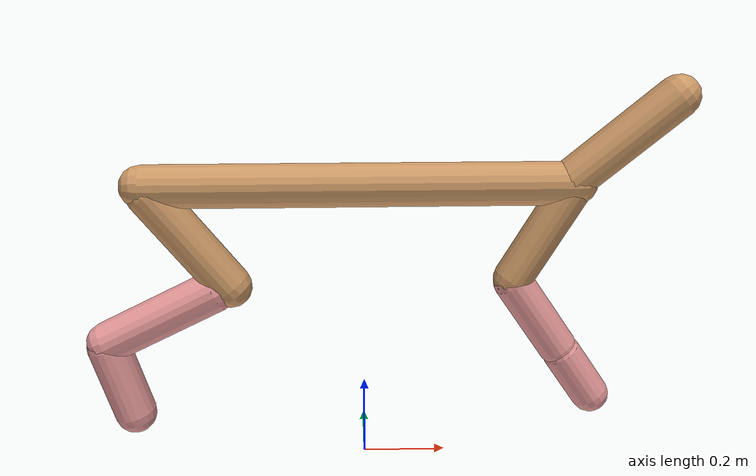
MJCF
<mujoco model="cheetah">
  <compiler angle="radian" coordinate="local" inertiafromgeom="true" settotalmass="14" />
  <default>
    <joint armature=".1" damping=".01" limited="true" solimplimit="0 .8 .03" solreflimit=".02 1" stiffness="8" />
    <geom conaffinity="0" condim="3" contype="1" friction="0.8 .1 .1" rgba="0.8 0.6 .4 1" solimp="0.0 0.8 0.01" solref="0.02 1" />
    <motor ctrllimited="true" ctrlrange="-1 1" />
  </default>
  <size nstack="300000" nuser_geom="1" />
  <option gravity="0 0 -9.81" timestep="0.01" />
  <worldbody>
    <body name="torso" pos="0.0 0.0 0.6946662967689762">
      <joint armature="0" axis="1 0 0" damping="0" limited="false" name="ignorex" pos="0 0 0" stiffness="0" type="slide" />
      <joint armature="0" axis="0 0 1" damping="0" limited="false" name="ignorez" pos="0 0 0" stiffness="0" type="slide" />
      <joint armature="0" axis="0 1 0" damping="0" limited="false" name="ignorey" pos="0 0 0" stiffness="0" type="hinge" />
      <geom fromto="-0.5 0.0 0.0 0.48753355813216903 0.0 0.0" name="torso" size="0.05026941521083623" type="capsule" />
      <geom axisangle="0 1 0 .87" name="head" pos="0.587533558132169 0.0 0.1" size="0.0495490521474705 0.15" type="capsule" />

      <body name="bthigh" pos="-.5 0 0">
        <joint axis="0 1 0" damping="6" name="bthigh" pos="0 0 0" range="-.52 1.05" stiffness="240" type="hinge" />
        <geom axisangle="0 1 0 -3.8" name="bthigh" pos="0.09960038783305557 0.0 -0.12948050418297224" size="0.050540253906082036 0.1443445873148318" type="capsule" />
        <body name="bshin" pos="0.15920077566611113 0.0 -0.24896100836594448">
          <joint axis="0 1 0" damping="4.5" name="bshin" pos="0 0 0" range="-.785 .785" stiffness="180" type="hinge" />
          <geom axisangle="0 1 0 -2.03" name="bshin" pos="-0.13939356662730273 0.0 -0.06969678331365137" rgba="0.9 0.6 0.6 1" size="0.050540253906082036 0.14932198687741222" type="capsule" />
          <body name="bfoot" pos="-0.27878713325460547 0.0 -0.13939356662730273">
            <joint axis="0 1 0" damping="3" name="bfoot" pos="0 0 0" range="-.4 .785" stiffness="120" type="hinge" />
            <geom axisangle="0 1 0 -.27" name="bfoot" pos="0.02987445839433305 0.0 -0.09659408214167686" rgba="0.9 0.6 0.6 1" size="0.050540253906082036 0.09357511177651166" type="capsule" />
            <inertial mass="10" />
          </body>
        </body>
      </body>
      <body name="fthigh" pos="0.48753355813216903 0.0 0.0">
        <joint axis="0 1 0" damping="4.5" name="fthigh" pos="0 0 0" range="-1.5 0.8" stiffness="180" type="hinge" />
        <geom axisangle="0 1 0 .52" name="fthigh" pos="-0.0692444563758793 0.0 -0.1187047823586502" size="0.04633051222807141 0.13150052178861674" type="capsule" />
        <body name="fshin" pos="-0.1384889127517586 0.0 -0.2374095647173004">
          <joint axis="0 1 0" damping="3" name="fshin" pos="0 0 0" range="-1.2 1.1" stiffness="120" type="hinge" />
          <geom axisangle="0 1 0 -.6" name="fshin" pos="0.06430029612919702 0.0 -0.08903117925581125" rgba="0.9 0.6 0.6 1" size="0.04633051222807141 0.10480492713979979" type="capsule" />
          <body name="ffoot" pos="0.12860059225839404 0.0 -0.1780623585116225">
            <joint axis="0 1 0" damping="1.5" name="ffoot" pos="0 0 0" range="-3.1 -0.3" stiffness="60" type="hinge" />
            <geom axisangle="0 1 0 -.6" name="ffoot" pos="0.044573234617992265 0.0 -0.06933614273909909" rgba="0.9 0.6 0.6 1" size="0.04633051222807141 0.06921080094137723" type="capsule" />
            <inertial mass="10" />
          </body>
        </body>
      </body>
    </body>
  </worldbody>
  <actuator>
    <motor gear="120" joint="bthigh" name="bthigh" />
    <motor gear="90" joint="bshin" name="bshin" />
    <motor gear="60" joint="bfoot" name="bfoot" />
    <motor gear="120" joint="fthigh" name="fthigh" />
    <motor gear="60" joint="fshin" name="fshin" />
    <motor gear="30" joint="ffoot" name="ffoot" />
  </actuator>
</mujoco>
